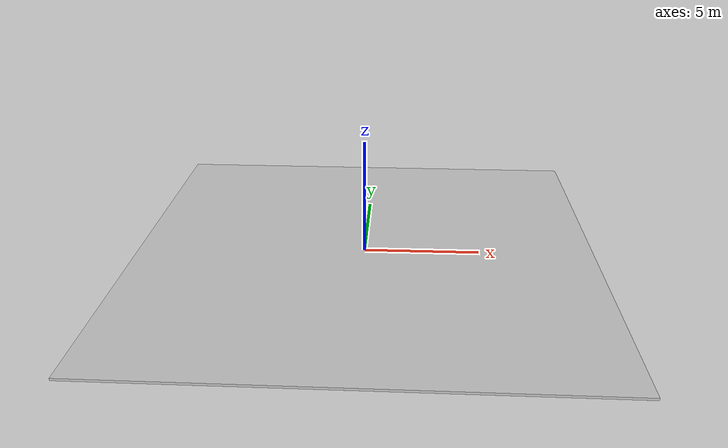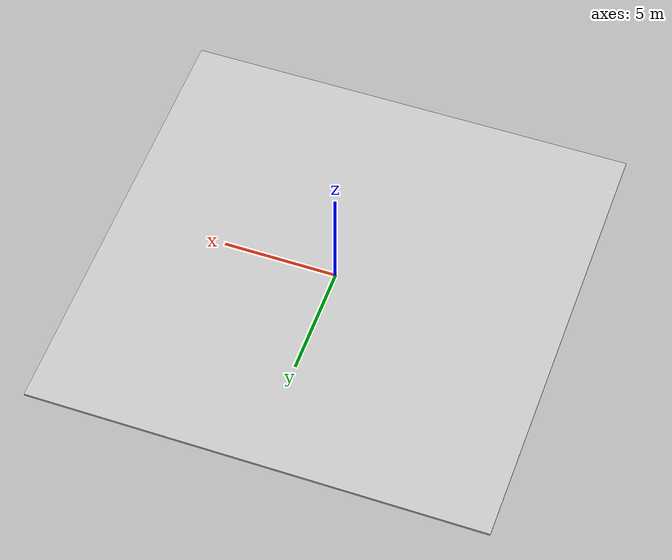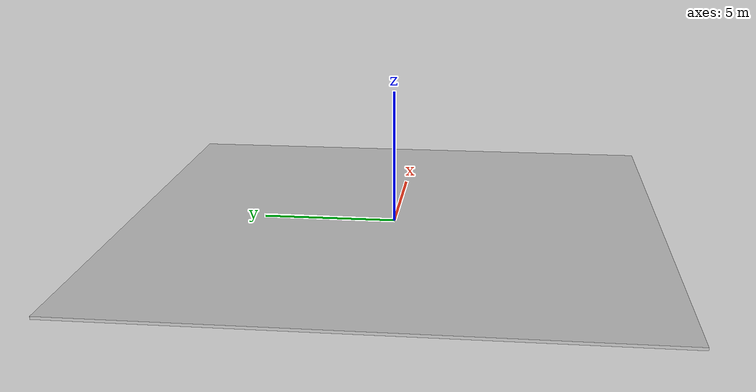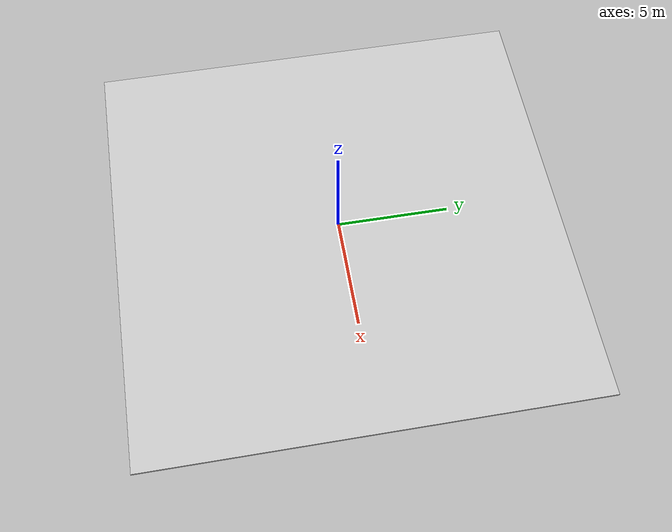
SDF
<?xml version="1.0" ?>
<!--
  Load several rendering sensors.
-->
<sdf version="1.9">
  <world name="servo_test">
    <physics name="1ms" type="ignored">
      <max_step_size>0.001</max_step_size>
      <real_time_factor>1.0</real_time_factor>
    </physics>
    <plugin
      filename="gz-sim-physics-system"
      name="gz::sim::systems::Physics">
    </plugin>
    <plugin
      filename="gz-sim-sensors-system"
      name="gz::sim::systems::Sensors">
      <render_engine>ogre2</render_engine>
    </plugin>
    <plugin
      filename="gz-sim-user-commands-system"
      name="gz::sim::systems::UserCommands">
    </plugin>
    <plugin
      filename="gz-sim-scene-broadcaster-system"
      name="gz::sim::systems::SceneBroadcaster">
    </plugin>

    <gui fullscreen="0">

      <!-- 3D scene -->
      <plugin filename="MinimalScene" name="3D View">
        <gz-gui>
          <title>3D View</title>
          <property type="bool" key="showTitleBar">false</property>
          <property type="string" key="state">docked</property>
        </gz-gui>
        <engine>ogre2</engine>
        <scene>scene</scene>
        <ambient_light>0.4 0.4 0.4</ambient_light>
        <background_color>0.8 0.8 0.8</background_color>
        <camera_pose>-6 0 6 0 0.5 0</camera_pose>
      </plugin>

      <!-- Plugins that add functionality to the scene -->
      <plugin filename="EntityContextMenuPlugin" name="Entity context menu">
        <gz-gui>
          <property key="state" type="string">floating</property>
          <property key="width" type="double">5</property>
          <property key="height" type="double">5</property>
          <property key="showTitleBar" type="bool">false</property>
        </gz-gui>
      </plugin>
      <plugin filename="GzSceneManager" name="Scene Manager">
        <gz-gui>
          <property key="resizable" type="bool">false</property>
          <property key="width" type="double">5</property>
          <property key="height" type="double">5</property>
          <property key="state" type="string">floating</property>
          <property key="showTitleBar" type="bool">false</property>
        </gz-gui>
      </plugin>
      <plugin filename="InteractiveViewControl" name="Interactive view control">
        <gz-gui>
          <property key="resizable" type="bool">false</property>
          <property key="width" type="double">5</property>
          <property key="height" type="double">5</property>
          <property key="state" type="string">floating</property>
          <property key="showTitleBar" type="bool">false</property>
        </gz-gui>
      </plugin>
      <plugin filename="CameraTracking" name="Camera Tracking">
        <gz-gui>
          <property key="resizable" type="bool">false</property>
          <property key="width" type="double">5</property>
          <property key="height" type="double">5</property>
          <property key="state" type="string">floating</property>
          <property key="showTitleBar" type="bool">false</property>
        </gz-gui>
      </plugin>
      <!-- World control -->
      <plugin filename="WorldControl" name="World control">
        <gz-gui>
          <title>World control</title>
          <property type="bool" key="showTitleBar">false</property>
          <property type="bool" key="resizable">false</property>
          <property type="double" key="height">72</property>
          <property type="double" key="z">1</property>

          <property type="string" key="state">floating</property>
          <anchors target="3D View">
            <line own="left" target="left"/>
            <line own="bottom" target="bottom"/>
          </anchors>
        </gz-gui>
        <play_pause>true</play_pause>
        <step>true</step>
        <start_paused>true</start_paused>
        <use_event>true</use_event>
      </plugin>

      <!-- World statistics -->
      <plugin filename="WorldStats" name="World stats">
        <gz-gui>
          <title>World stats</title>
          <property type="bool" key="showTitleBar">false</property>
          <property type="bool" key="resizable">false</property>
          <property type="double" key="height">110</property>
          <property type="double" key="width">290</property>
          <property type="double" key="z">1</property>

          <property type="string" key="state">floating</property>
          <anchors target="3D View">
            <line own="right" target="right"/>
            <line own="bottom" target="bottom"/>
          </anchors>
        </gz-gui>

        <sim_time>true</sim_time>
        <real_time>true</real_time>
        <real_time_factor>true</real_time_factor>
        <iterations>true</iterations>
      </plugin>

      <!-- Inspector -->
      <plugin filename="ComponentInspector" name="Component inspector">
        <gz-gui>
          <property type="string" key="state">docked</property>
        </gz-gui>
      </plugin>

      <!-- Entity tree -->
      <plugin filename="EntityTree" name="Entity tree">
        <gz-gui>
          <property type="string" key="state">docked</property>
        </gz-gui>
      </plugin>

      <plugin filename="ImageDisplay" name="Image Display">
        <gz-gui>
          <title>RGB camera</title>
          <property key="state" type="string">floating</property>
          <property type="double" key="width">350</property>
          <property type="double" key="height">315</property>
        </gz-gui>
        <topic>camera</topic>
        <topic_picker>false</topic_picker>
      </plugin>
    </gui>

    <light type="directional" name="sun">
      <cast_shadows>true</cast_shadows>
      <pose>0 0 10 0 0 0</pose>
      <diffuse>0.8 0.8 0.8 1</diffuse>
      <specular>0.2 0.2 0.2 1</specular>
      <attenuation>
        <range>1000</range>
        <constant>0.9</constant>
        <linear>0.01</linear>
        <quadratic>0.001</quadratic>
      </attenuation>
      <direction>-0.5 0.1 -0.9</direction>
    </light>

    <model name="ground_plane">
      <static>true</static>
      <link name="link">
        <collision name="collision">
          <geometry>
            <box>
              <size>20 20 0.1</size>
            </box>
          </geometry>
        </collision>
        <visual name="visual">
          <geometry>
            <box>
              <size>20 20 0.1</size>
            </box>
          </geometry>
          <material>
            <ambient>0.8 0.8 0.8 1</ambient>
            <diffuse>0.8 0.8 0.8 1</diffuse>
            <specular>0.8 0.8 0.8 1</specular>
          </material>
        </visual>
      </link>
    </model>
  </world>
</sdf>
